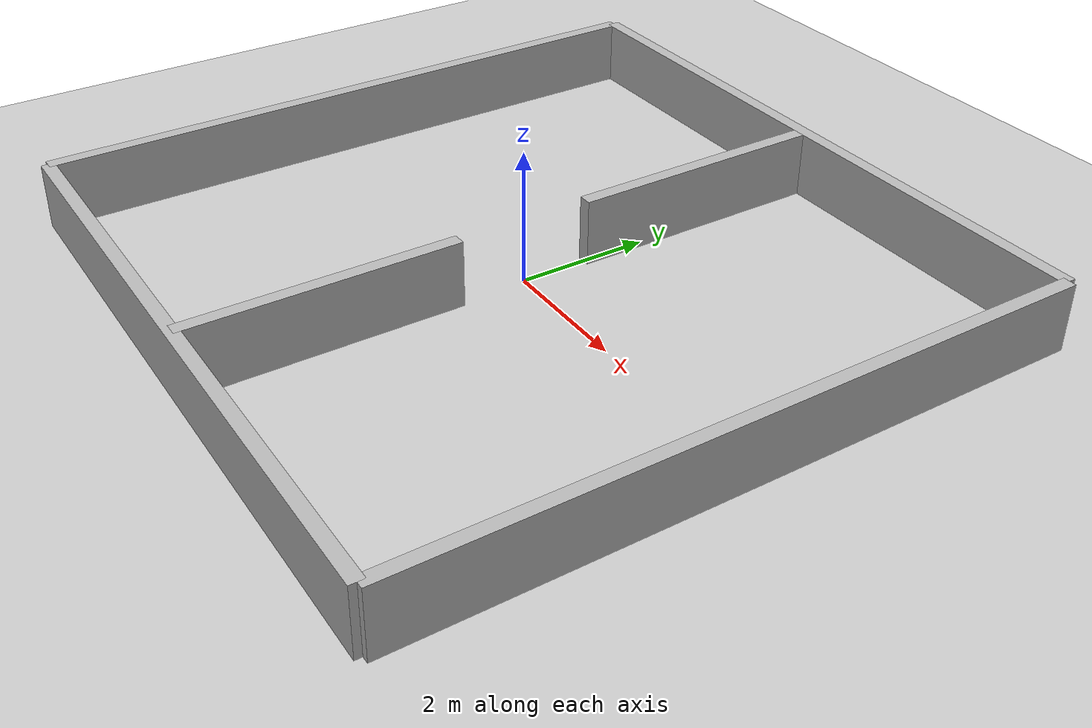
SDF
<?xml version="1.0" ?>
<sdf version="1.6">
  <world name="competition_world">
    <include>
      <uri>model://sun</uri>
    </include>
    <include>
      <uri>model://ground_plane</uri>
    </include>

    <!-- Outer Walls -->
    <model name="outer_walls">
      <static>true</static>
      <link name="link">
        <!-- North Wall -->
        <collision name="wall_n"><pose>0 5 0.5 0 0 0</pose><geometry><box><size>10 0.2 1</size></box></geometry></collision>
        <visual name="wall_n_vis"><pose>0 5 0.5 0 0 0</pose><geometry><box><size>10 0.2 1</size></box></geometry></visual>
        <!-- South Wall -->
        <collision name="wall_s"><pose>0 -5 0.5 0 0 0</pose><geometry><box><size>10 0.2 1</size></box></geometry></collision>
        <visual name="wall_s_vis"><pose>0 -5 0.5 0 0 0</pose><geometry><box><size>10 0.2 1</size></box></geometry></visual>
        <!-- East Wall -->
        <collision name="wall_e"><pose>5 0 0.5 0 0 0</pose><geometry><box><size>0.2 10 1</size></box></geometry></collision>
        <visual name="wall_e_vis"><pose>5 0 0.5 0 0 0</pose><geometry><box><size>0.2 10 1</size></box></geometry></visual>
        <!-- West Wall -->
        <collision name="wall_w"><pose>-5 0 0.5 0 0 0</pose><geometry><box><size>0.2 10 1</size></box></geometry></collision>
        <visual name="wall_w_vis"><pose>-5 0 0.5 0 0 0</pose><geometry><box><size>0.2 10 1</size></box></geometry></visual>
      </link>
    </model>

    <!-- Central Divider with a gap -->
    <model name="center_divider">
      <static>true</static>
      <link name="link">
        <!-- Top Half -->
        <collision name="div_top"><pose>0 3 0.5 0 0 0</pose><geometry><box><size>0.2 4 1</size></box></geometry></collision>
        <visual name="div_top_vis"><pose>0 3 0.5 0 0 0</pose><geometry><box><size>0.2 4 1</size></box></geometry></visual>
        <!-- Bottom Half -->
        <collision name="div_bot"><pose>0 -3 0.5 0 0 0</pose><geometry><box><size>0.2 4 1</size></box></geometry></collision>
        <visual name="div_bot_vis"><pose>0 -3 0.5 0 0 0</pose><geometry><box><size>0.2 4 1</size></box></geometry></visual>
      </link>
    </model>
  </world>
</sdf>
